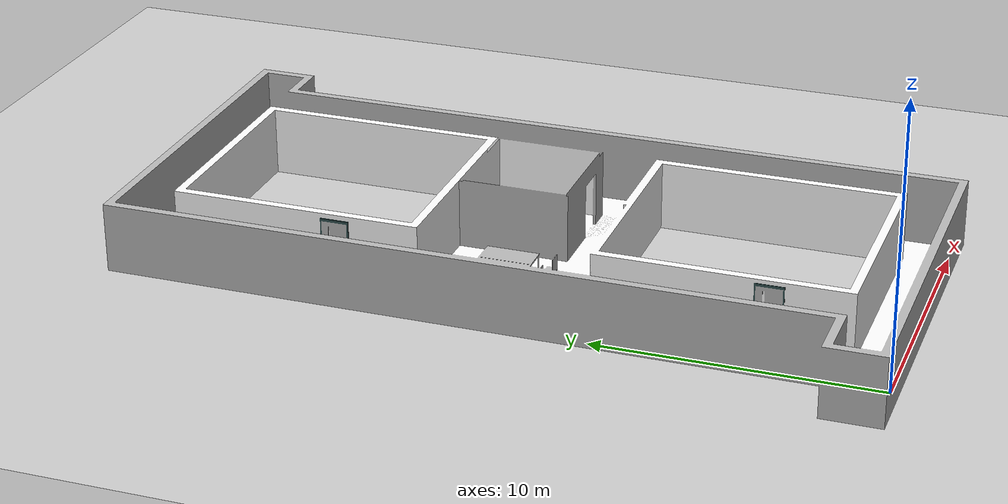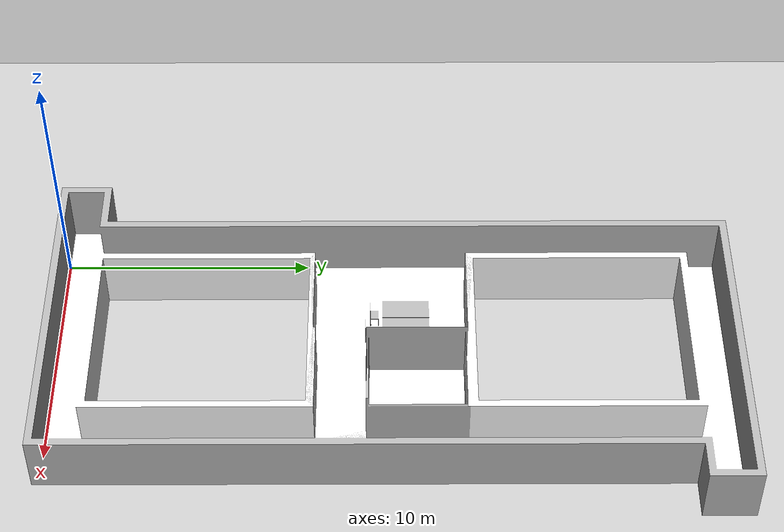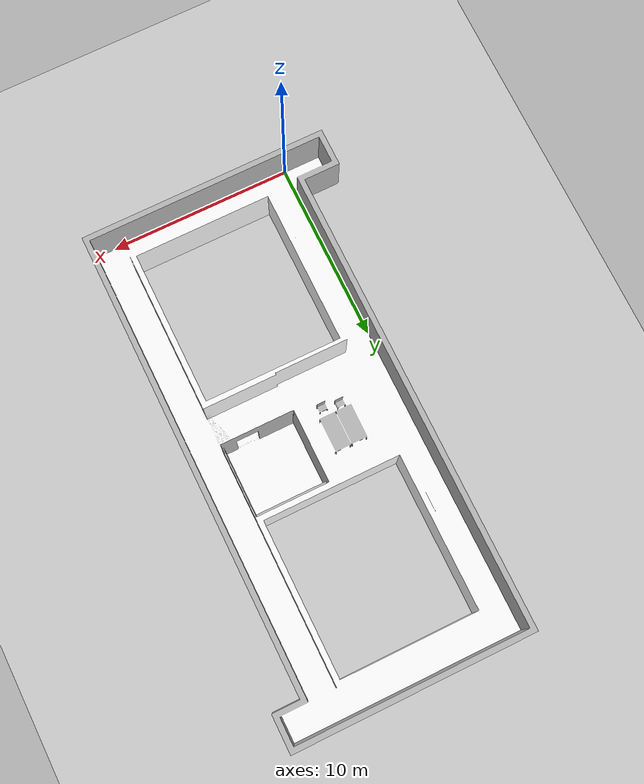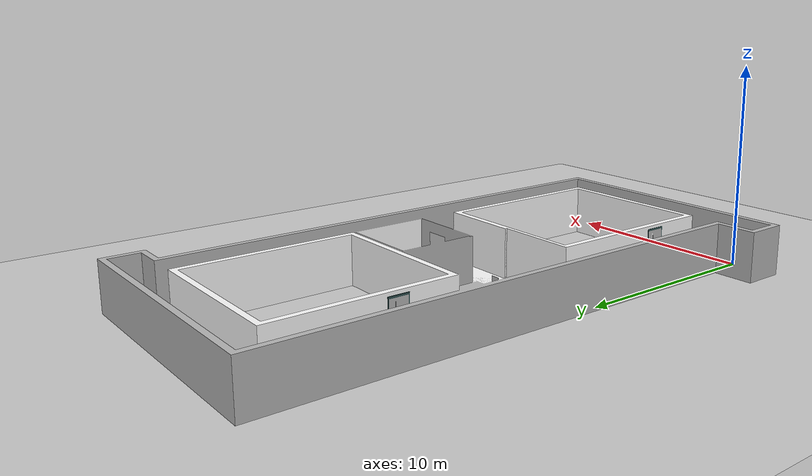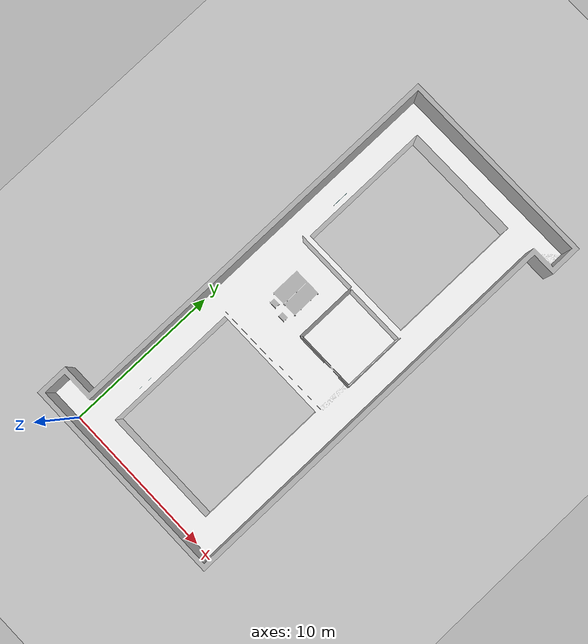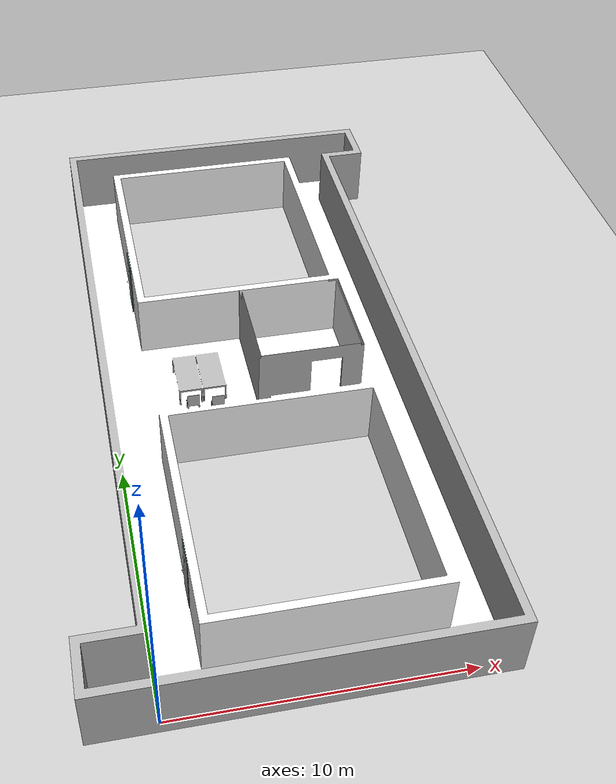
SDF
<?xml version="1.0" ?>
<sdf version="1.4">
  <world name="world">
    <include>
      <uri>model://ground_plane</uri>
    </include>

    <model name="levine">
      <static>true</static>
      <link name="body">
        <visual name="visual">
          <pose>-0.0 -0.0 0.01 0 0 0</pose>
          <geometry>
            <mesh><uri>model://levine/levine.dae</uri></mesh>
          </geometry>
        </visual>
        <collision name="collision">
          <pose>-0.0 0.0 -0.01 0 0 0</pose>
          <geometry>
            <mesh><uri>model://levine/levine.stl</uri></mesh>
          </geometry>
        </collision>
      </link>
    </model>
    <gui fullscreen='0'>
      <camera name='user_camera'>
        <pose>5.0 5.0 50.0 0.0 1.57 1.57</pose>
        <view_controller>orbit</view_controller>
      </camera>
    </gui>

    <light name='sun1' type='point'>
      <cast_shadows>1</cast_shadows>
      <pose>0 1 1 0 0 0</pose>
      <diffuse>0.8 0.8 0.8 1</diffuse>
      <specular>0.2 0.2 0.2 1</specular>
      <attenuation>
        <range>20</range>
        <constant>0.9</constant>
        <linear>0.01</linear>
        <quadratic>0.001</quadratic>
      </attenuation>
      <direction>-0 0 -1</direction>
    </light>

    <light type="point" name="sun2">
      <cast_shadows>true</cast_shadows>
      <pose>0 0 5 0 0 0</pose>
      <diffuse>0.8 0.8 0.8 1</diffuse>
      <specular>0.2 0.2 0.2 1</specular>
      <attenuation>
        <range>10</range>
        <constant>0.9</constant>
        <linear>0.01</linear>
        <quadratic>0.001</quadratic>
      </attenuation>
      <direction>-0.0 0.0 -1.0</direction>
    </light>

  </world>

</sdf>
